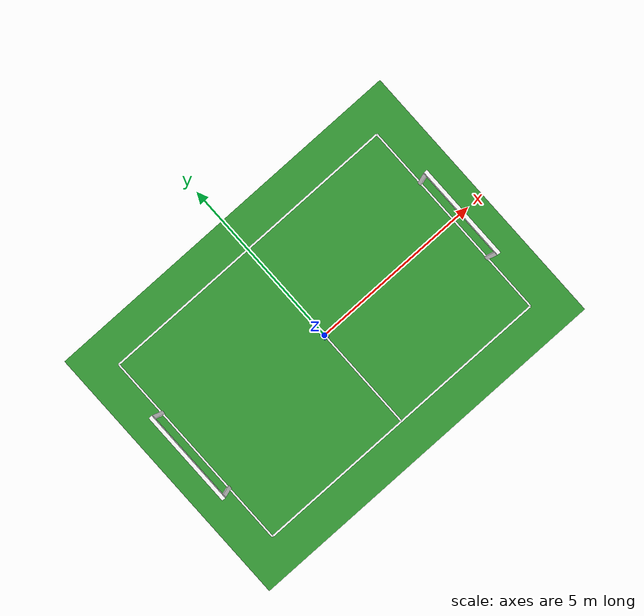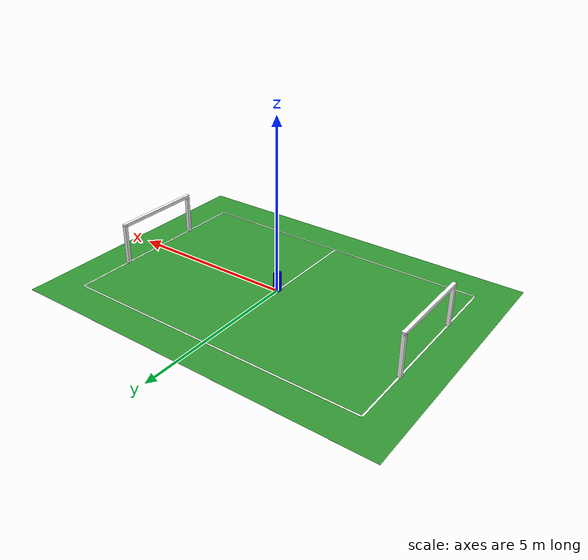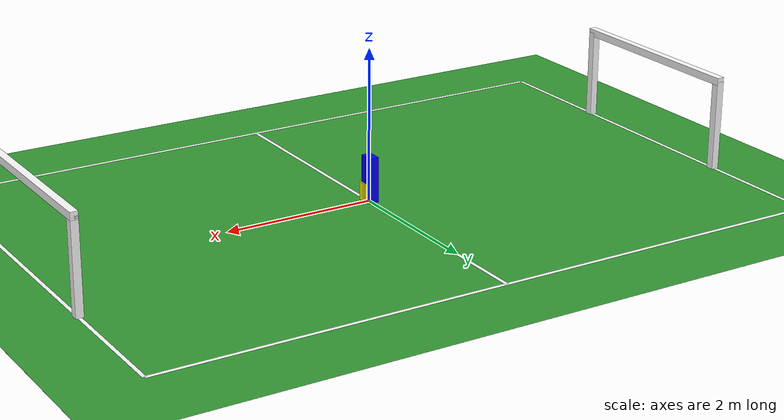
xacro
<robot xmlns:xacro="http://www.ros.org/wiki/xacro" name="soccer">
  <material name="white"> <color rgba="1.0 1.0 1.0 1.0"/> </material>
  <material name="green"> <color rgba="0.2 0.6 0.2 1.0"/> </material>
  <material name="blue"> <color rgba="0.0 0.0 1.0 1.0"/> </material>
  <material name="red"> <color rgba="1.0 0.0 0.0 1.0"/> </material>
  <material name="yellow"> <color rgba="1.0 1.0 0.0 1.0"/> </material>
  <xacro:include filename="player_macro.xacro"/>
  <xacro:include filename="field.xacro"/>

  <xacro:player name="player1" color="blue"/>
  <xacro:player name="player2" color="blue"/>
  <xacro:player name="player3" color="blue"/>
  <xacro:player name="player4" color="red"/>
  <xacro:player name="player5" color="red"/>
  <xacro:player name="player6" color="red"/>
</robot>

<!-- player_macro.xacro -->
<robot xmlns:xacro="http://www.ros.org/wiki/xacro">
  <xacro:macro name="player" params="name color">
    <link name="${name}">
      <visual>
        <origin xyz="-0.015 0.000 0.300"/>
        <geometry>
          <box size="0.130 0.200 0.600"/>
        </geometry>
        <material name="${color}"/>
      </visual>
      <collision>
        <origin xyz="-0.015 0.000 0.300"/>
        <geometry>
          <box size="0.130 0.200 0.600"/>
        </geometry>
      </collision>
      <inertial>
        <origin xyz="-0.015 0.000 0.300"/>
        <mass value="4"/>
        <inertia ixx="0.05" ixy="0" ixz="0" iyy="0.05" iyz="0" izz="0.08"/>
      </inertial>
    </link>
    <link name="${name}_x"/>
    <link name="${name}_y"/>

    <xacro:player_foot name="${name}_right_foot"/>
    <xacro:player_foot name="${name}_left_foot"/>

    <joint name="${name}_x_joint" type="prismatic">
      <axis xyz="1 0 0"/>
      <parent link="field"/>
      <child link="${name}_x"/>
    </joint>

    <joint name="${name}_y_joint" type="prismatic">
      <axis xyz="0 1 0"/>
      <parent link="${name}_x"/>
      <child link="${name}_y"/>
    </joint>

    <joint name="${name}_joint" type="continuous">
      <axis xyz="0 0 1"/>
      <parent link="${name}_y"/>
      <child link="${name}"/>
    </joint>

    <joint name="${name}_right_foot_joint" type="revolute">
      <axis xyz="0 -1 0"/>
      <parent link="${name}"/>
      <child link="${name}_right_foot"/>
      <origin xyz="0.070 -0.055 0.250"/>
    </joint>

    <joint name="${name}_left_foot_joint" type="revolute">
      <axis xyz="0 -1 0"/>
      <parent link="${name}"/>
      <child link="${name}_left_foot"/>
      <origin xyz="0.070 0.055 0.250"/>
    </joint>
  </xacro:macro>

  <xacro:macro name="player_foot" params="name">
    <link name="${name}">
      <visual>
        <origin xyz="0.000 0.000 -0.120"/>
        <geometry>
          <box size="0.020 0.090 0.240"/>
        </geometry>
        <material name="yellow"/>
      </visual>
      <collision>
        <origin xyz="0.000 0.000 -0.120"/>
        <geometry>
          <box size="0.020 0.090 0.240"/>
        </geometry>
      </collision>
      <inertial>
        <mass value="0.5"/>
        <inertia ixx="0.01" ixy="0" ixz="0" iyy="0.01" iyz="0" izz="0.02"/>
      </inertial>
    </link>
  </xacro:macro>
</robot>

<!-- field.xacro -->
<robot xmlns:xacro="http://www.ros.org/wiki/xacro">

  <link name="field">
    <visual>
      <geometry>
        <box size="11 8 0.001"/>
      </geometry>
      <material name="green"/>
    </visual>
  </link>

  <joint name="line1_joint" type="fixed">
    <parent link="field"/>
    <child link="line1_link"/>
    <origin xyz="4.5 0 0"/>
  </joint>

  <link name="line1_link">
    <visual>
      <geometry>
        <box size="0.05 6 0.002"/>
      </geometry>
      <material name="white"/>
    </visual>
  </link>

  <joint name="line3_joint" type="fixed">
    <parent link="field"/>
    <child link="line3_link"/>
    <origin xyz="0 -3 0"/>
  </joint>

  <link name="line3_link">
    <visual>
      <geometry>
        <box size="9 0.05 0.002"/>
      </geometry>
      <material name="white"/>
    </visual>
  </link>

  <joint name="line4_joint" type="fixed">
    <parent link="field"/>
    <child link="line4_link"/>
  </joint>

  <link name="line4_link">
    <visual>
      <geometry>
        <box size="0.05 6 0.002"/>
      </geometry>
      <material name="white"/>
    </visual>
  </link>

  <joint name="line2_joint" type="fixed">
    <parent link="field"/>
    <child link="line2_link"/>
    <origin xyz="0 3 0"/>
  </joint>

  <link name="line5_link">
    <visual>
      <geometry>
        <box size="0.05 6 0.002"/>
      </geometry>
      <material name="white"/>
    </visual>
  </link>

  <joint name="line5_joint" type="fixed">
    <parent link="field"/>
    <child link="line5_link"/>
    <origin xyz="-4.5 0 0"/>
  </joint>

  <link name="line2_link">
    <visual>
      <geometry>
        <box size="9 0.05 0.002"/>
      </geometry>
      <material name="white"/>
    </visual>
  </link>

  <joint name="right_goal_post1_joint" type="fixed">
    <parent link="field"/>
    <child link="right_goal_post1_link"/>
    <origin xyz="4.5 -1.3 0.6"/>
  </joint>

  <link name="right_goal_post1_link">
    <visual>
      <geometry>
        <box size="0.10 0.10 1.2"/>
      </geometry>
      <material name="white"/>
    </visual>
  </link>

  <joint name="left_goal_post1_joint" type="fixed">
    <parent link="field"/>
    <child link="left_goal_post1_link"/>
    <origin xyz="4.5 1.3 0.6"/>
  </joint>

  <link name="left_goal_post1_link">
    <visual>
      <geometry>
        <box size="0.10 0.10 1.2"/>
      </geometry>
      <material name="white"/>
    </visual>
  </link>

  <joint name="top_goal_post1_joint" type="fixed">
    <parent link="field"/>
    <child link="top_goal_post1_link"/>
    <origin xyz="4.5 0 1.2"/>
  </joint>

  <link name="top_goal_post1_link">
    <visual>
      <geometry>
        <box size="0.10 2.7 0.10"/>
      </geometry>
      <material name="white"/>
    </visual>
  </link>

  <joint name="right_goal_post2_joint" type="fixed">
    <parent link="field"/>
    <child link="right_goal_post2_link"/>
    <origin xyz="-4.5 -1.3 0.6"/>
  </joint>

  <link name="right_goal_post2_link">
    <visual>
      <geometry>
        <box size="0.10 0.10 1.2"/>
      </geometry>
      <material name="white"/>
    </visual>
  </link>

  <joint name="left_goal_post2_joint" type="fixed">
    <parent link="field"/>
    <child link="left_goal_post2_link"/>
    <origin xyz="-4.5 1.3 0.6"/>
  </joint>

  <link name="left_goal_post2_link">
    <visual>
      <geometry>
        <box size="0.10 0.10 1.2"/>
      </geometry>
      <material name="white"/>
    </visual>
  </link>

  <joint name="top_goal_post2_joint" type="fixed">
    <parent link="field"/>
    <child link="top_goal_post2_link"/>
    <origin xyz="-4.5 0 1.2"/>
  </joint>

  <link name="top_goal_post2_link">
    <visual>
      <geometry>
        <box size="0.10 2.7 0.10"/>
      </geometry>
      <material name="white"/>
    </visual>
  </link>

</robot>
